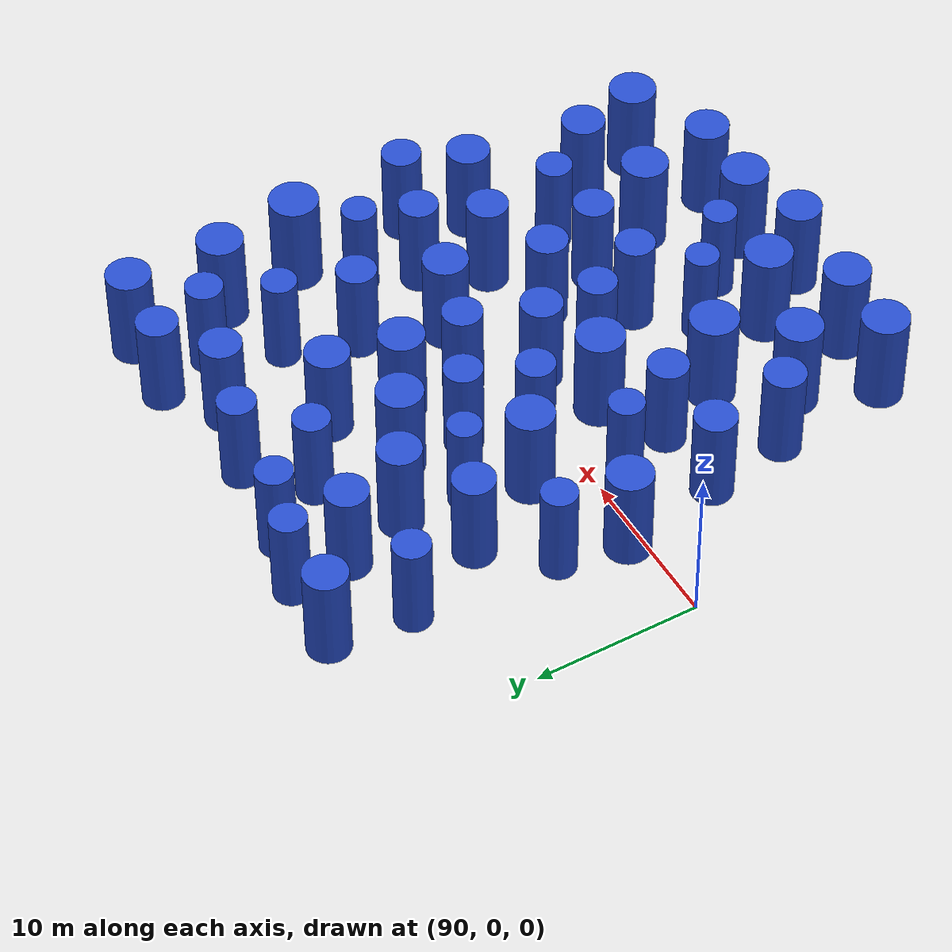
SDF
<sdf version="1.7">
 <world name="default">
  <model name="39">
   <static>1</static>
   <link name="link">
    <inertial>
     <mass>2</mass>
     <inertia><ixx>6.78663</ixx><ixy>0</ixy><ixz>0</ixz><iyy>6.78663</iyy><iyz>0</iyz><izz>1.57327</izz></inertia>
    </inertial>
    <collision name="collision">
     <geometry><cylinder><length>6</length><radius>1.2543</radius></cylinder></geometry>
     <surface><contact><collide_without_contact>1</collide_without_contact></contact></surface>
    </collision>
    <visual name="visual">
     <geometry><cylinder><length>6</length><radius>1.2543</radius></cylinder></geometry>
     <material>
      <script><uri>file://media/materials/scripts/gazebo.material</uri><name>Gazebo/Blue</name></script>
     </material>
    </visual>
    <gravity>0</gravity>
   </link>
   <pose>96.9068 -5.35558 3 0 -0 0</pose>
  </model>
  <model name="42">
   <static>1</static>
   <link name="link">
    <inertial>
     <mass>2</mass>
     <inertia><ixx>6.6543</ixx><ixy>0</ixy><ixz>0</ixz><iyy>6.6543</iyy><iyz>0</iyz><izz>1.3086</izz></inertia>
    </inertial>
    <collision name="collision">
     <geometry><cylinder><length>6</length><radius>1.14394</radius></cylinder></geometry>
     <surface><contact><collide_without_contact>1</collide_without_contact></contact></surface>
    </collision>
    <visual name="visual">
     <geometry><cylinder><length>6</length><radius>1.14394</radius></cylinder></geometry>
     <material>
      <script><uri>file://media/materials/scripts/gazebo.material</uri><name>Gazebo/Blue</name></script>
     </material>
    </visual>
    <gravity>0</gravity>
   </link>
   <pose>111.082 16.8538 3 0 -0 0</pose>
  </model>
  <model name="52">
   <static>1</static>
   <link name="link">
    <inertial>
     <mass>2</mass>
     <inertia><ixx>7.11514</ixx><ixy>0</ixy><ixz>0</ixz><iyy>7.11514</iyy><iyz>0</iyz><izz>2.23028</izz></inertia>
    </inertial>
    <collision name="collision">
     <geometry><cylinder><length>6</length><radius>1.49341</radius></cylinder></geometry>
     <surface><contact><collide_without_contact>1</collide_without_contact></contact></surface>
    </collision>
    <visual name="visual">
     <geometry><cylinder><length>6</length><radius>1.49341</radius></cylinder></geometry>
     <material>
      <script><uri>file://media/materials/scripts/gazebo.material</uri><name>Gazebo/Blue</name></script>
     </material>
    </visual>
    <gravity>0</gravity>
   </link>
   <pose>123.838 6.60741 3 0 -0 0</pose>
  </model>
  <model name="56">
   <static>1</static>
   <link name="link">
    <inertial>
     <mass>2</mass>
     <inertia><ixx>7.01812</ixx><ixy>0</ixy><ixz>0</ixz><iyy>7.01812</iyy><iyz>0</iyz><izz>2.03624</izz></inertia>
    </inertial>
    <collision name="collision">
     <geometry><cylinder><length>6</length><radius>1.42697</radius></cylinder></geometry>
     <surface><contact><collide_without_contact>1</collide_without_contact></contact></surface>
    </collision>
    <visual name="visual">
     <geometry><cylinder><length>6</length><radius>1.42697</radius></cylinder></geometry>
     <material>
      <script><uri>file://media/materials/scripts/gazebo.material</uri><name>Gazebo/Blue</name></script>
     </material>
    </visual>
    <gravity>0</gravity>
   </link>
   <pose>122.304 -15.5514 3 0 -0 0</pose>
  </model>
  <model name="62">
   <static>1</static>
   <link name="link">
    <inertial>
     <mass>2</mass>
     <inertia><ixx>6.91961</ixx><ixy>0</ixy><ixz>0</ixz><iyy>6.91961</iyy><iyz>0</iyz><izz>1.83922</izz></inertia>
    </inertial>
    <collision name="collision">
     <geometry><cylinder><length>6</length><radius>1.35618</radius></cylinder></geometry>
     <surface><contact><collide_without_contact>1</collide_without_contact></contact></surface>
    </collision>
    <visual name="visual">
     <geometry><cylinder><length>6</length><radius>1.35618</radius></cylinder></geometry>
     <material>
      <script><uri>file://media/materials/scripts/gazebo.material</uri><name>Gazebo/Blue</name></script>
     </material>
    </visual>
    <gravity>0</gravity>
   </link>
   <pose>115.081 1.41427 3 0 -0 0</pose>
  </model>
  <model name="63">
   <static>1</static>
   <link name="link">
    <inertial>
     <mass>2</mass>
     <inertia><ixx>6.83665</ixx><ixy>0</ixy><ixz>0</ixz><iyy>6.83665</iyy><iyz>0</iyz><izz>1.6733</izz></inertia>
    </inertial>
    <collision name="collision">
     <geometry><cylinder><length>6</length><radius>1.29356</radius></cylinder></geometry>
     <surface><contact><collide_without_contact>1</collide_without_contact></contact></surface>
    </collision>
    <visual name="visual">
     <geometry><cylinder><length>6</length><radius>1.29356</radius></cylinder></geometry>
     <material>
      <script><uri>file://media/materials/scripts/gazebo.material</uri><name>Gazebo/Blue</name></script>
     </material>
    </visual>
    <gravity>0</gravity>
   </link>
   <pose>103.454 10.8356 3 0 -0 0</pose>
  </model>
  <model name="83">
   <static>1</static>
   <link name="link">
    <inertial>
     <mass>2</mass>
     <inertia><ixx>6.6061</ixx><ixy>0</ixy><ixz>0</ixz><iyy>6.6061</iyy><iyz>0</iyz><izz>1.21219</izz></inertia>
    </inertial>
    <collision name="collision">
     <geometry><cylinder><length>6</length><radius>1.101</radius></cylinder></geometry>
     <surface><contact><collide_without_contact>1</collide_without_contact></contact></surface>
    </collision>
    <visual name="visual">
     <geometry><cylinder><length>6</length><radius>1.101</radius></cylinder></geometry>
     <material>
      <script><uri>file://media/materials/scripts/gazebo.material</uri><name>Gazebo/Blue</name></script>
     </material>
    </visual>
    <gravity>0</gravity>
   </link>
   <pose>105.418 17.4841 3 0 -0 0</pose>
  </model>
  <model name="99">
   <static>1</static>
   <link name="link">
    <inertial>
     <mass>2</mass>
     <inertia><ixx>6.55403</ixx><ixy>0</ixy><ixz>0</ixz><iyy>6.55403</iyy><iyz>0</iyz><izz>1.10806</izz></inertia>
    </inertial>
    <collision name="collision">
     <geometry><cylinder><length>6</length><radius>1.05265</radius></cylinder></geometry>
     <surface><contact><collide_without_contact>1</collide_without_contact></contact></surface>
    </collision>
    <visual name="visual">
     <geometry><cylinder><length>6</length><radius>1.05265</radius></cylinder></geometry>
     <material>
      <script><uri>file://media/materials/scripts/gazebo.material</uri><name>Gazebo/Blue</name></script>
     </material>
    </visual>
    <gravity>0</gravity>
   </link>
   <pose>118.27 10.4749 3 0 -0 0</pose>
  </model>
  <model name="131">
   <static>1</static>
   <link name="link">
    <inertial>
     <mass>2</mass>
     <inertia><ixx>6.66448</ixx><ixy>0</ixy><ixz>0</ixz><iyy>6.66448</iyy><iyz>0</iyz><izz>1.32895</izz></inertia>
    </inertial>
    <collision name="collision">
     <geometry><cylinder><length>6</length><radius>1.1528</radius></cylinder></geometry>
     <surface><contact><collide_without_contact>1</collide_without_contact></contact></surface>
    </collision>
    <visual name="visual">
     <geometry><cylinder><length>6</length><radius>1.1528</radius></cylinder></geometry>
     <material>
      <script><uri>file://media/materials/scripts/gazebo.material</uri><name>Gazebo/Blue</name></script>
     </material>
    </visual>
    <gravity>0</gravity>
   </link>
   <pose>105.336 1.13782 3 0 -0 0</pose>
  </model>
  <model name="144">
   <static>1</static>
   <link name="link">
    <inertial>
     <mass>2</mass>
     <inertia><ixx>6.78884</ixx><ixy>0</ixy><ixz>0</ixz><iyy>6.78884</iyy><iyz>0</iyz><izz>1.57769</izz></inertia>
    </inertial>
    <collision name="collision">
     <geometry><cylinder><length>6</length><radius>1.25606</radius></cylinder></geometry>
     <surface><contact><collide_without_contact>1</collide_without_contact></contact></surface>
    </collision>
    <visual name="visual">
     <geometry><cylinder><length>6</length><radius>1.25606</radius></cylinder></geometry>
     <material>
      <script><uri>file://media/materials/scripts/gazebo.material</uri><name>Gazebo/Blue</name></script>
     </material>
    </visual>
    <gravity>0</gravity>
   </link>
   <pose>109.29 -1.56346 3 0 -0 0</pose>
  </model>
  <model name="149">
   <static>1</static>
   <link name="link">
    <inertial>
     <mass>2</mass>
     <inertia><ixx>6.55248</ixx><ixy>0</ixy><ixz>0</ixz><iyy>6.55248</iyy><iyz>0</iyz><izz>1.10496</izz></inertia>
    </inertial>
    <collision name="collision">
     <geometry><cylinder><length>6</length><radius>1.05117</radius></cylinder></geometry>
     <surface><contact><collide_without_contact>1</collide_without_contact></contact></surface>
    </collision>
    <visual name="visual">
     <geometry><cylinder><length>6</length><radius>1.05117</radius></cylinder></geometry>
     <material>
      <script><uri>file://media/materials/scripts/gazebo.material</uri><name>Gazebo/Blue</name></script>
     </material>
    </visual>
    <gravity>0</gravity>
   </link>
   <pose>100.251 -1.67718 3 0 -0 0</pose>
  </model>
  <model name="151">
   <static>1</static>
   <link name="link">
    <inertial>
     <mass>2</mass>
     <inertia><ixx>6.60589</ixx><ixy>0</ixy><ixz>0</ixz><iyy>6.60589</iyy><iyz>0</iyz><izz>1.21178</izz></inertia>
    </inertial>
    <collision name="collision">
     <geometry><cylinder><length>6</length><radius>1.10081</radius></cylinder></geometry>
     <surface><contact><collide_without_contact>1</collide_without_contact></contact></surface>
    </collision>
    <visual name="visual">
     <geometry><cylinder><length>6</length><radius>1.10081</radius></cylinder></geometry>
     <material>
      <script><uri>file://media/materials/scripts/gazebo.material</uri><name>Gazebo/Blue</name></script>
     </material>
    </visual>
    <gravity>0</gravity>
   </link>
   <pose>97.083 13.6072 3 0 -0 0</pose>
  </model>
  <model name="161">
   <static>1</static>
   <link name="link">
    <inertial>
     <mass>2</mass>
     <inertia><ixx>6.93977</ixx><ixy>0</ixy><ixz>0</ixz><iyy>6.93977</iyy><iyz>0</iyz><izz>1.87953</izz></inertia>
    </inertial>
    <collision name="collision">
     <geometry><cylinder><length>6</length><radius>1.37096</radius></cylinder></geometry>
     <surface><contact><collide_without_contact>1</collide_without_contact></contact></surface>
    </collision>
    <visual name="visual">
     <geometry><cylinder><length>6</length><radius>1.37096</radius></cylinder></geometry>
     <material>
      <script><uri>file://media/materials/scripts/gazebo.material</uri><name>Gazebo/Blue</name></script>
     </material>
    </visual>
    <gravity>0</gravity>
   </link>
   <pose>111.058 6.51577 3 0 -0 0</pose>
  </model>
  <model name="176">
   <static>1</static>
   <link name="link">
    <inertial>
     <mass>2</mass>
     <inertia><ixx>6.59238</ixx><ixy>0</ixy><ixz>0</ixz><iyy>6.59238</iyy><iyz>0</iyz><izz>1.18476</izz></inertia>
    </inertial>
    <collision name="collision">
     <geometry><cylinder><length>6</length><radius>1.08847</radius></cylinder></geometry>
     <surface><contact><collide_without_contact>1</collide_without_contact></contact></surface>
    </collision>
    <visual name="visual">
     <geometry><cylinder><length>6</length><radius>1.08847</radius></cylinder></geometry>
     <material>
      <script><uri>file://media/materials/scripts/gazebo.material</uri><name>Gazebo/Blue</name></script>
     </material>
    </visual>
    <gravity>0</gravity>
   </link>
   <pose>102.017 18.4121 3 0 -0 0</pose>
  </model>
  <model name="206">
   <static>1</static>
   <link name="link">
    <inertial>
     <mass>2</mass>
     <inertia><ixx>6.63313</ixx><ixy>0</ixy><ixz>0</ixz><iyy>6.63313</iyy><iyz>0</iyz><izz>1.26625</izz></inertia>
    </inertial>
    <collision name="collision">
     <geometry><cylinder><length>6</length><radius>1.12528</radius></cylinder></geometry>
     <surface><contact><collide_without_contact>1</collide_without_contact></contact></surface>
    </collision>
    <visual name="visual">
     <geometry><cylinder><length>6</length><radius>1.12528</radius></cylinder></geometry>
     <material>
      <script><uri>file://media/materials/scripts/gazebo.material</uri><name>Gazebo/Blue</name></script>
     </material>
    </visual>
    <gravity>0</gravity>
   </link>
   <pose>120.028 14.3503 3 0 -0 0</pose>
  </model>
  <model name="215">
   <static>1</static>
   <link name="link">
    <inertial>
     <mass>2</mass>
     <inertia><ixx>7.0036</ixx><ixy>0</ixy><ixz>0</ixz><iyy>7.0036</iyy><iyz>0</iyz><izz>2.00719</izz></inertia>
    </inertial>
    <collision name="collision">
     <geometry><cylinder><length>6</length><radius>1.41675</radius></cylinder></geometry>
     <surface><contact><collide_without_contact>1</collide_without_contact></contact></surface>
    </collision>
    <visual name="visual">
     <geometry><cylinder><length>6</length><radius>1.41675</radius></cylinder></geometry>
     <material>
      <script><uri>file://media/materials/scripts/gazebo.material</uri><name>Gazebo/Blue</name></script>
     </material>
    </visual>
    <gravity>0</gravity>
   </link>
   <pose>98.5863 -17.7386 3 0 -0 0</pose>
  </model>
  <model name="216">
   <static>1</static>
   <link name="link">
    <inertial>
     <mass>2</mass>
     <inertia><ixx>6.50965</ixx><ixy>0</ixy><ixz>0</ixz><iyy>6.50965</iyy><iyz>0</iyz><izz>1.01929</izz></inertia>
    </inertial>
    <collision name="collision">
     <geometry><cylinder><length>6</length><radius>1.0096</radius></cylinder></geometry>
     <surface><contact><collide_without_contact>1</collide_without_contact></contact></surface>
    </collision>
    <visual name="visual">
     <geometry><cylinder><length>6</length><radius>1.0096</radius></cylinder></geometry>
     <material>
      <script><uri>file://media/materials/scripts/gazebo.material</uri><name>Gazebo/Blue</name></script>
     </material>
    </visual>
    <gravity>0</gravity>
   </link>
   <pose>110.57 -14.3049 3 0 -0 0</pose>
  </model>
  <model name="219">
   <static>1</static>
   <link name="link">
    <inertial>
     <mass>2</mass>
     <inertia><ixx>6.99869</ixx><ixy>0</ixy><ixz>0</ixz><iyy>6.99869</iyy><iyz>0</iyz><izz>1.99738</izz></inertia>
    </inertial>
    <collision name="collision">
     <geometry><cylinder><length>6</length><radius>1.41329</radius></cylinder></geometry>
     <surface><contact><collide_without_contact>1</collide_without_contact></contact></surface>
    </collision>
    <visual name="visual">
     <geometry><cylinder><length>6</length><radius>1.41329</radius></cylinder></geometry>
     <material>
      <script><uri>file://media/materials/scripts/gazebo.material</uri><name>Gazebo/Blue</name></script>
     </material>
    </visual>
    <gravity>0</gravity>
   </link>
   <pose>116.354 -12.7557 3 0 -0 0</pose>
  </model>
  <model name="225">
   <static>1</static>
   <link name="link">
    <inertial>
     <mass>2</mass>
     <inertia><ixx>6.89351</ixx><ixy>0</ixy><ixz>0</ixz><iyy>6.89351</iyy><iyz>0</iyz><izz>1.78702</izz></inertia>
    </inertial>
    <collision name="collision">
     <geometry><cylinder><length>6</length><radius>1.3368</radius></cylinder></geometry>
     <surface><contact><collide_without_contact>1</collide_without_contact></contact></surface>
    </collision>
    <visual name="visual">
     <geometry><cylinder><length>6</length><radius>1.3368</radius></cylinder></geometry>
     <material>
      <script><uri>file://media/materials/scripts/gazebo.material</uri><name>Gazebo/Blue</name></script>
     </material>
    </visual>
    <gravity>0</gravity>
   </link>
   <pose>117.283 -17.6762 3 0 -0 0</pose>
  </model>
  <model name="226">
   <static>1</static>
   <link name="link">
    <inertial>
     <mass>2</mass>
     <inertia><ixx>7.0612</ixx><ixy>0</ixy><ixz>0</ixz><iyy>7.0612</iyy><iyz>0</iyz><izz>2.1224</izz></inertia>
    </inertial>
    <collision name="collision">
     <geometry><cylinder><length>6</length><radius>1.45685</radius></cylinder></geometry>
     <surface><contact><collide_without_contact>1</collide_without_contact></contact></surface>
    </collision>
    <visual name="visual">
     <geometry><cylinder><length>6</length><radius>1.45685</radius></cylinder></geometry>
     <material>
      <script><uri>file://media/materials/scripts/gazebo.material</uri><name>Gazebo/Blue</name></script>
     </material>
    </visual>
    <gravity>0</gravity>
   </link>
   <pose>103.364 -9.34728 3 0 -0 0</pose>
  </model>
  <model name="231">
   <static>1</static>
   <link name="link">
    <inertial>
     <mass>2</mass>
     <inertia><ixx>6.65192</ixx><ixy>0</ixy><ixz>0</ixz><iyy>6.65192</iyy><iyz>0</iyz><izz>1.30383</izz></inertia>
    </inertial>
    <collision name="collision">
     <geometry><cylinder><length>6</length><radius>1.14185</radius></cylinder></geometry>
     <surface><contact><collide_without_contact>1</collide_without_contact></contact></surface>
    </collision>
    <visual name="visual">
     <geometry><cylinder><length>6</length><radius>1.14185</radius></cylinder></geometry>
     <material>
      <script><uri>file://media/materials/scripts/gazebo.material</uri><name>Gazebo/Blue</name></script>
     </material>
    </visual>
    <gravity>0</gravity>
   </link>
   <pose>106.979 4.85049 3 0 -0 0</pose>
  </model>
  <model name="248">
   <static>1</static>
   <link name="link">
    <inertial>
     <mass>2</mass>
     <inertia><ixx>7.03299</ixx><ixy>0</ixy><ixz>0</ixz><iyy>7.03299</iyy><iyz>0</iyz><izz>2.06598</izz></inertia>
    </inertial>
    <collision name="collision">
     <geometry><cylinder><length>6</length><radius>1.43735</radius></cylinder></geometry>
     <surface><contact><collide_without_contact>1</collide_without_contact></contact></surface>
    </collision>
    <visual name="visual">
     <geometry><cylinder><length>6</length><radius>1.43735</radius></cylinder></geometry>
     <material>
      <script><uri>file://media/materials/scripts/gazebo.material</uri><name>Gazebo/Blue</name></script>
     </material>
    </visual>
    <gravity>0</gravity>
   </link>
   <pose>106.365 -14.9417 3 0 -0 0</pose>
  </model>
  <model name="250">
   <static>1</static>
   <link name="link">
    <inertial>
     <mass>2</mass>
     <inertia><ixx>6.77852</ixx><ixy>0</ixy><ixz>0</ixz><iyy>6.77852</iyy><iyz>0</iyz><izz>1.55704</izz></inertia>
    </inertial>
    <collision name="collision">
     <geometry><cylinder><length>6</length><radius>1.24782</radius></cylinder></geometry>
     <surface><contact><collide_without_contact>1</collide_without_contact></contact></surface>
    </collision>
    <visual name="visual">
     <geometry><cylinder><length>6</length><radius>1.24782</radius></cylinder></geometry>
     <material>
      <script><uri>file://media/materials/scripts/gazebo.material</uri><name>Gazebo/Blue</name></script>
     </material>
    </visual>
    <gravity>0</gravity>
   </link>
   <pose>113.58 -4.45693 3 0 -0 0</pose>
  </model>
  <model name="252">
   <static>1</static>
   <link name="link">
    <inertial>
     <mass>2</mass>
     <inertia><ixx>6.78141</ixx><ixy>0</ixy><ixz>0</ixz><iyy>6.78141</iyy><iyz>0</iyz><izz>1.56282</izz></inertia>
    </inertial>
    <collision name="collision">
     <geometry><cylinder><length>6</length><radius>1.25013</radius></cylinder></geometry>
     <surface><contact><collide_without_contact>1</collide_without_contact></contact></surface>
    </collision>
    <visual name="visual">
     <geometry><cylinder><length>6</length><radius>1.25013</radius></cylinder></geometry>
     <material>
      <script><uri>file://media/materials/scripts/gazebo.material</uri><name>Gazebo/Blue</name></script>
     </material>
    </visual>
    <gravity>0</gravity>
   </link>
   <pose>115.497 15.5947 3 0 -0 0</pose>
  </model>
  <model name="253">
   <static>1</static>
   <link name="link">
    <inertial>
     <mass>2</mass>
     <inertia><ixx>6.69574</ixx><ixy>0</ixy><ixz>0</ixz><iyy>6.69574</iyy><iyz>0</iyz><izz>1.39147</izz></inertia>
    </inertial>
    <collision name="collision">
     <geometry><cylinder><length>6</length><radius>1.17961</radius></cylinder></geometry>
     <surface><contact><collide_without_contact>1</collide_without_contact></contact></surface>
    </collision>
    <visual name="visual">
     <geometry><cylinder><length>6</length><radius>1.17961</radius></cylinder></geometry>
     <material>
      <script><uri>file://media/materials/scripts/gazebo.material</uri><name>Gazebo/Blue</name></script>
     </material>
    </visual>
    <gravity>0</gravity>
   </link>
   <pose>119.878 0.50945 3 0 -0 0</pose>
  </model>
  <model name="260">
   <static>1</static>
   <link name="link">
    <inertial>
     <mass>2</mass>
     <inertia><ixx>7.04637</ixx><ixy>0</ixy><ixz>0</ixz><iyy>7.04637</iyy><iyz>0</iyz><izz>2.09275</izz></inertia>
    </inertial>
    <collision name="collision">
     <geometry><cylinder><length>6</length><radius>1.44663</radius></cylinder></geometry>
     <surface><contact><collide_without_contact>1</collide_without_contact></contact></surface>
    </collision>
    <visual name="visual">
     <geometry><cylinder><length>6</length><radius>1.44663</radius></cylinder></geometry>
     <material>
      <script><uri>file://media/materials/scripts/gazebo.material</uri><name>Gazebo/Blue</name></script>
     </material>
    </visual>
    <gravity>0</gravity>
   </link>
   <pose>105.408 -3.10889 3 0 -0 0</pose>
  </model>
  <model name="296">
   <static>1</static>
   <link name="link">
    <inertial>
     <mass>2</mass>
     <inertia><ixx>6.77021</ixx><ixy>0</ixy><ixz>0</ixz><iyy>6.77021</iyy><iyz>0</iyz><izz>1.54043</izz></inertia>
    </inertial>
    <collision name="collision">
     <geometry><cylinder><length>6</length><radius>1.24114</radius></cylinder></geometry>
     <surface><contact><collide_without_contact>1</collide_without_contact></contact></surface>
    </collision>
    <visual name="visual">
     <geometry><cylinder><length>6</length><radius>1.24114</radius></cylinder></geometry>
     <material>
      <script><uri>file://media/materials/scripts/gazebo.material</uri><name>Gazebo/Blue</name></script>
     </material>
    </visual>
    <gravity>0</gravity>
   </link>
   <pose>118.804 17.9223 3 0 -0 0</pose>
  </model>
  <model name="298">
   <static>1</static>
   <link name="link">
    <inertial>
     <mass>2</mass>
     <inertia><ixx>6.96178</ixx><ixy>0</ixy><ixz>0</ixz><iyy>6.96178</iyy><iyz>0</iyz><izz>1.92356</izz></inertia>
    </inertial>
    <collision name="collision">
     <geometry><cylinder><length>6</length><radius>1.38693</radius></cylinder></geometry>
     <surface><contact><collide_without_contact>1</collide_without_contact></contact></surface>
    </collision>
    <visual name="visual">
     <geometry><cylinder><length>6</length><radius>1.38693</radius></cylinder></geometry>
     <material>
      <script><uri>file://media/materials/scripts/gazebo.material</uri><name>Gazebo/Blue</name></script>
     </material>
    </visual>
    <gravity>0</gravity>
   </link>
   <pose>100.486 -13.2019 3 0 -0 0</pose>
  </model>
  <model name="300">
   <static>1</static>
   <link name="link">
    <inertial>
     <mass>2</mass>
     <inertia><ixx>6.71025</ixx><ixy>0</ixy><ixz>0</ixz><iyy>6.71025</iyy><iyz>0</iyz><izz>1.4205</izz></inertia>
    </inertial>
    <collision name="collision">
     <geometry><cylinder><length>6</length><radius>1.19185</radius></cylinder></geometry>
     <surface><contact><collide_without_contact>1</collide_without_contact></contact></surface>
    </collision>
    <visual name="visual">
     <geometry><cylinder><length>6</length><radius>1.19185</radius></cylinder></geometry>
     <material>
      <script><uri>file://media/materials/scripts/gazebo.material</uri><name>Gazebo/Blue</name></script>
     </material>
    </visual>
    <gravity>0</gravity>
   </link>
   <pose>124.222 -0.750996 3 0 -0 0</pose>
  </model>
  <model name="306">
   <static>1</static>
   <link name="link">
    <inertial>
     <mass>2</mass>
     <inertia><ixx>6.58584</ixx><ixy>0</ixy><ixz>0</ixz><iyy>6.58584</iyy><iyz>0</iyz><izz>1.17169</izz></inertia>
    </inertial>
    <collision name="collision">
     <geometry><cylinder><length>6</length><radius>1.08245</radius></cylinder></geometry>
     <surface><contact><collide_without_contact>1</collide_without_contact></contact></surface>
    </collision>
    <visual name="visual">
     <geometry><cylinder><length>6</length><radius>1.08245</radius></cylinder></geometry>
     <material>
      <script><uri>file://media/materials/scripts/gazebo.material</uri><name>Gazebo/Blue</name></script>
     </material>
    </visual>
    <gravity>0</gravity>
   </link>
   <pose>118.829 -8.02923 3 0 -0 0</pose>
  </model>
  <model name="326">
   <static>1</static>
   <link name="link">
    <inertial>
     <mass>2</mass>
     <inertia><ixx>6.78618</ixx><ixy>0</ixy><ixz>0</ixz><iyy>6.78618</iyy><iyz>0</iyz><izz>1.57236</izz></inertia>
    </inertial>
    <collision name="collision">
     <geometry><cylinder><length>6</length><radius>1.25394</radius></cylinder></geometry>
     <surface><contact><collide_without_contact>1</collide_without_contact></contact></surface>
    </collision>
    <visual name="visual">
     <geometry><cylinder><length>6</length><radius>1.25394</radius></cylinder></geometry>
     <material>
      <script><uri>file://media/materials/scripts/gazebo.material</uri><name>Gazebo/Blue</name></script>
     </material>
    </visual>
    <gravity>0</gravity>
   </link>
   <pose>99.5092 8.42386 3 0 -0 0</pose>
  </model>
  <model name="341">
   <static>1</static>
   <link name="link">
    <inertial>
     <mass>2</mass>
     <inertia><ixx>6.56323</ixx><ixy>0</ixy><ixz>0</ixz><iyy>6.56323</iyy><iyz>0</iyz><izz>1.12647</izz></inertia>
    </inertial>
    <collision name="collision">
     <geometry><cylinder><length>6</length><radius>1.06135</radius></cylinder></geometry>
     <surface><contact><collide_without_contact>1</collide_without_contact></contact></surface>
    </collision>
    <visual name="visual">
     <geometry><cylinder><length>6</length><radius>1.06135</radius></cylinder></geometry>
     <material>
      <script><uri>file://media/materials/scripts/gazebo.material</uri><name>Gazebo/Blue</name></script>
     </material>
    </visual>
    <gravity>0</gravity>
   </link>
   <pose>96.3451 4.93652 3 0 -0 0</pose>
  </model>
  <model name="367">
   <static>1</static>
   <link name="link">
    <inertial>
     <mass>2</mass>
     <inertia><ixx>6.54648</ixx><ixy>0</ixy><ixz>0</ixz><iyy>6.54648</iyy><iyz>0</iyz><izz>1.09296</izz></inertia>
    </inertial>
    <collision name="collision">
     <geometry><cylinder><length>6</length><radius>1.04545</radius></cylinder></geometry>
     <surface><contact><collide_without_contact>1</collide_without_contact></contact></surface>
    </collision>
    <visual name="visual">
     <geometry><cylinder><length>6</length><radius>1.04545</radius></cylinder></geometry>
     <material>
      <script><uri>file://media/materials/scripts/gazebo.material</uri><name>Gazebo/Blue</name></script>
     </material>
    </visual>
    <gravity>0</gravity>
   </link>
   <pose>121.241 3.70567 3 0 -0 0</pose>
  </model>
  <model name="374">
   <static>1</static>
   <link name="link">
    <inertial>
     <mass>2</mass>
     <inertia><ixx>6.70713</ixx><ixy>0</ixy><ixz>0</ixz><iyy>6.70713</iyy><iyz>0</iyz><izz>1.41426</izz></inertia>
    </inertial>
    <collision name="collision">
     <geometry><cylinder><length>6</length><radius>1.18923</radius></cylinder></geometry>
     <surface><contact><collide_without_contact>1</collide_without_contact></contact></surface>
    </collision>
    <visual name="visual">
     <geometry><cylinder><length>6</length><radius>1.18923</radius></cylinder></geometry>
     <material>
      <script><uri>file://media/materials/scripts/gazebo.material</uri><name>Gazebo/Blue</name></script>
     </material>
    </visual>
    <gravity>0</gravity>
   </link>
   <pose>110.826 -8.70696 3 0 -0 0</pose>
  </model>
  <model name="377">
   <static>1</static>
   <link name="link">
    <inertial>
     <mass>2</mass>
     <inertia><ixx>6.6814</ixx><ixy>0</ixy><ixz>0</ixz><iyy>6.6814</iyy><iyz>0</iyz><izz>1.36279</izz></inertia>
    </inertial>
    <collision name="collision">
     <geometry><cylinder><length>6</length><radius>1.16739</radius></cylinder></geometry>
     <surface><contact><collide_without_contact>1</collide_without_contact></contact></surface>
    </collision>
    <visual name="visual">
     <geometry><cylinder><length>6</length><radius>1.16739</radius></cylinder></geometry>
     <material>
      <script><uri>file://media/materials/scripts/gazebo.material</uri><name>Gazebo/Blue</name></script>
     </material>
    </visual>
    <gravity>0</gravity>
   </link>
   <pose>109.204 -5.19663 3 0 -0 0</pose>
  </model>
  <model name="384">
   <static>1</static>
   <link name="link">
    <inertial>
     <mass>2</mass>
     <inertia><ixx>6.98659</ixx><ixy>0</ixy><ixz>0</ixz><iyy>6.98659</iyy><iyz>0</iyz><izz>1.97318</izz></inertia>
    </inertial>
    <collision name="collision">
     <geometry><cylinder><length>6</length><radius>1.4047</radius></cylinder></geometry>
     <surface><contact><collide_without_contact>1</collide_without_contact></contact></surface>
    </collision>
    <visual name="visual">
     <geometry><cylinder><length>6</length><radius>1.4047</radius></cylinder></geometry>
     <material>
      <script><uri>file://media/materials/scripts/gazebo.material</uri><name>Gazebo/Blue</name></script>
     </material>
    </visual>
    <gravity>0</gravity>
   </link>
   <pose>102.204 3.30427 3 0 -0 0</pose>
  </model>
  <model name="393">
   <static>1</static>
   <link name="link">
    <inertial>
     <mass>2</mass>
     <inertia><ixx>7.02995</ixx><ixy>0</ixy><ixz>0</ixz><iyy>7.02995</iyy><iyz>0</iyz><izz>2.05991</izz></inertia>
    </inertial>
    <collision name="collision">
     <geometry><cylinder><length>6</length><radius>1.43524</radius></cylinder></geometry>
     <surface><contact><collide_without_contact>1</collide_without_contact></contact></surface>
    </collision>
    <visual name="visual">
     <geometry><cylinder><length>6</length><radius>1.43524</radius></cylinder></geometry>
     <material>
      <script><uri>file://media/materials/scripts/gazebo.material</uri><name>Gazebo/Blue</name></script>
     </material>
    </visual>
    <gravity>0</gravity>
   </link>
   <pose>112.901 -17.5183 3 0 -0 0</pose>
  </model>
  <model name="396">
   <static>1</static>
   <link name="link">
    <inertial>
     <mass>2</mass>
     <inertia><ixx>6.78049</ixx><ixy>0</ixy><ixz>0</ixz><iyy>6.78049</iyy><iyz>0</iyz><izz>1.56098</izz></inertia>
    </inertial>
    <collision name="collision">
     <geometry><cylinder><length>6</length><radius>1.24939</radius></cylinder></geometry>
     <surface><contact><collide_without_contact>1</collide_without_contact></contact></surface>
    </collision>
    <visual name="visual">
     <geometry><cylinder><length>6</length><radius>1.24939</radius></cylinder></geometry>
     <material>
      <script><uri>file://media/materials/scripts/gazebo.material</uri><name>Gazebo/Blue</name></script>
     </material>
    </visual>
    <gravity>0</gravity>
   </link>
   <pose>117.889 -2.972 3 0 -0 0</pose>
  </model>
  <model name="405">
   <static>1</static>
   <link name="link">
    <inertial>
     <mass>2</mass>
     <inertia><ixx>6.87516</ixx><ixy>0</ixy><ixz>0</ixz><iyy>6.87516</iyy><iyz>0</iyz><izz>1.75032</izz></inertia>
    </inertial>
    <collision name="collision">
     <geometry><cylinder><length>6</length><radius>1.323</radius></cylinder></geometry>
     <surface><contact><collide_without_contact>1</collide_without_contact></contact></surface>
    </collision>
    <visual name="visual">
     <geometry><cylinder><length>6</length><radius>1.323</radius></cylinder></geometry>
     <material>
      <script><uri>file://media/materials/scripts/gazebo.material</uri><name>Gazebo/Blue</name></script>
     </material>
    </visual>
    <gravity>0</gravity>
   </link>
   <pose>111.909 10.7725 3 0 -0 0</pose>
  </model>
  <model name="410">
   <static>1</static>
   <link name="link">
    <inertial>
     <mass>2</mass>
     <inertia><ixx>6.97256</ixx><ixy>0</ixy><ixz>0</ixz><iyy>6.97256</iyy><iyz>0</iyz><izz>1.94512</izz></inertia>
    </inertial>
    <collision name="collision">
     <geometry><cylinder><length>6</length><radius>1.39468</radius></cylinder></geometry>
     <surface><contact><collide_without_contact>1</collide_without_contact></contact></surface>
    </collision>
    <visual name="visual">
     <geometry><cylinder><length>6</length><radius>1.39468</radius></cylinder></geometry>
     <material>
      <script><uri>file://media/materials/scripts/gazebo.material</uri><name>Gazebo/Blue</name></script>
     </material>
    </visual>
    <gravity>0</gravity>
   </link>
   <pose>123.018 11.83 3 0 -0 0</pose>
  </model>
  <model name="412">
   <static>1</static>
   <link name="link">
    <inertial>
     <mass>2</mass>
     <inertia><ixx>6.60209</ixx><ixy>0</ixy><ixz>0</ixz><iyy>6.60209</iyy><iyz>0</iyz><izz>1.20419</izz></inertia>
    </inertial>
    <collision name="collision">
     <geometry><cylinder><length>6</length><radius>1.09736</radius></cylinder></geometry>
     <surface><contact><collide_without_contact>1</collide_without_contact></contact></surface>
    </collision>
    <visual name="visual">
     <geometry><cylinder><length>6</length><radius>1.09736</radius></cylinder></geometry>
     <material>
      <script><uri>file://media/materials/scripts/gazebo.material</uri><name>Gazebo/Blue</name></script>
     </material>
    </visual>
    <gravity>0</gravity>
   </link>
   <pose>107.893 13.8842 3 0 -0 0</pose>
  </model>
  <model name="417">
   <static>1</static>
   <link name="link">
    <inertial>
     <mass>2</mass>
     <inertia><ixx>6.71624</ixx><ixy>0</ixy><ixz>0</ixz><iyy>6.71624</iyy><iyz>0</iyz><izz>1.43248</izz></inertia>
    </inertial>
    <collision name="collision">
     <geometry><cylinder><length>6</length><radius>1.19686</radius></cylinder></geometry>
     <surface><contact><collide_without_contact>1</collide_without_contact></contact></surface>
    </collision>
    <visual name="visual">
     <geometry><cylinder><length>6</length><radius>1.19686</radius></cylinder></geometry>
     <material>
      <script><uri>file://media/materials/scripts/gazebo.material</uri><name>Gazebo/Blue</name></script>
     </material>
    </visual>
    <gravity>0</gravity>
   </link>
   <pose>116.877 6.23394 3 0 -0 0</pose>
  </model>
  <model name="420">
   <static>1</static>
   <link name="link">
    <inertial>
     <mass>2</mass>
     <inertia><ixx>6.9205</ixx><ixy>0</ixy><ixz>0</ixz><iyy>6.9205</iyy><iyz>0</iyz><izz>1.84101</izz></inertia>
    </inertial>
    <collision name="collision">
     <geometry><cylinder><length>6</length><radius>1.35684</radius></cylinder></geometry>
     <surface><contact><collide_without_contact>1</collide_without_contact></contact></surface>
    </collision>
    <visual name="visual">
     <geometry><cylinder><length>6</length><radius>1.35684</radius></cylinder></geometry>
     <material>
      <script><uri>file://media/materials/scripts/gazebo.material</uri><name>Gazebo/Blue</name></script>
     </material>
    </visual>
    <gravity>0</gravity>
   </link>
   <pose>95.641 0.917125 3 0 -0 0</pose>
  </model>
  <model name="435">
   <static>1</static>
   <link name="link">
    <inertial>
     <mass>2</mass>
     <inertia><ixx>6.77064</ixx><ixy>0</ixy><ixz>0</ixz><iyy>6.77064</iyy><iyz>0</iyz><izz>1.54129</izz></inertia>
    </inertial>
    <collision name="collision">
     <geometry><cylinder><length>6</length><radius>1.24149</radius></cylinder></geometry>
     <surface><contact><collide_without_contact>1</collide_without_contact></contact></surface>
    </collision>
    <visual name="visual">
     <geometry><cylinder><length>6</length><radius>1.24149</radius></cylinder></geometry>
     <material>
      <script><uri>file://media/materials/scripts/gazebo.material</uri><name>Gazebo/Blue</name></script>
     </material>
    </visual>
    <gravity>0</gravity>
   </link>
   <pose>97.7713 -10.4511 3 0 -0 0</pose>
  </model>
  <model name="437">
   <static>1</static>
   <link name="link">
    <inertial>
     <mass>2</mass>
     <inertia><ixx>6.85996</ixx><ixy>0</ixy><ixz>0</ixz><iyy>6.85996</iyy><iyz>0</iyz><izz>1.71991</izz></inertia>
    </inertial>
    <collision name="collision">
     <geometry><cylinder><length>6</length><radius>1.31145</radius></cylinder></geometry>
     <surface><contact><collide_without_contact>1</collide_without_contact></contact></surface>
    </collision>
    <visual name="visual">
     <geometry><cylinder><length>6</length><radius>1.31145</radius></cylinder></geometry>
     <material>
      <script><uri>file://media/materials/scripts/gazebo.material</uri><name>Gazebo/Blue</name></script>
     </material>
    </visual>
    <gravity>0</gravity>
   </link>
   <pose>122.517 -4.31022 3 0 -0 0</pose>
  </model>
  <model name="444">
   <static>1</static>
   <link name="link">
    <inertial>
     <mass>2</mass>
     <inertia><ixx>6.86967</ixx><ixy>0</ixy><ixz>0</ixz><iyy>6.86967</iyy><iyz>0</iyz><izz>1.73934</izz></inertia>
    </inertial>
    <collision name="collision">
     <geometry><cylinder><length>6</length><radius>1.31884</radius></cylinder></geometry>
     <surface><contact><collide_without_contact>1</collide_without_contact></contact></surface>
    </collision>
    <visual name="visual">
     <geometry><cylinder><length>6</length><radius>1.31884</radius></cylinder></geometry>
     <material>
      <script><uri>file://media/materials/scripts/gazebo.material</uri><name>Gazebo/Blue</name></script>
     </material>
    </visual>
    <gravity>0</gravity>
   </link>
   <pose>121.333 -11.5195 3 0 -0 0</pose>
  </model>
  <model name="448">
   <static>1</static>
   <link name="link">
    <inertial>
     <mass>2</mass>
     <inertia><ixx>6.73469</ixx><ixy>0</ixy><ixz>0</ixz><iyy>6.73469</iyy><iyz>0</iyz><izz>1.46939</izz></inertia>
    </inertial>
    <collision name="collision">
     <geometry><cylinder><length>6</length><radius>1.21218</radius></cylinder></geometry>
     <surface><contact><collide_without_contact>1</collide_without_contact></contact></surface>
    </collision>
    <visual name="visual">
     <geometry><cylinder><length>6</length><radius>1.21218</radius></cylinder></geometry>
     <material>
      <script><uri>file://media/materials/scripts/gazebo.material</uri><name>Gazebo/Blue</name></script>
     </material>
    </visual>
    <gravity>0</gravity>
   </link>
   <pose>114.855 -8.33667 3 0 -0 0</pose>
  </model>
  <model name="462">
   <static>1</static>
   <link name="link">
    <inertial>
     <mass>2</mass>
     <inertia><ixx>6.95325</ixx><ixy>0</ixy><ixz>0</ixz><iyy>6.95325</iyy><iyz>0</iyz><izz>1.9065</izz></inertia>
    </inertial>
    <collision name="collision">
     <geometry><cylinder><length>6</length><radius>1.38076</radius></cylinder></geometry>
     <surface><contact><collide_without_contact>1</collide_without_contact></contact></surface>
    </collision>
    <visual name="visual">
     <geometry><cylinder><length>6</length><radius>1.38076</radius></cylinder></geometry>
     <material>
      <script><uri>file://media/materials/scripts/gazebo.material</uri><name>Gazebo/Blue</name></script>
     </material>
    </visual>
    <gravity>0</gravity>
   </link>
   <pose>107.27 8.70949 3 0 -0 0</pose>
  </model>
  <model name="468">
   <static>1</static>
   <link name="link">
    <inertial>
     <mass>2</mass>
     <inertia><ixx>6.71622</ixx><ixy>0</ixy><ixz>0</ixz><iyy>6.71622</iyy><iyz>0</iyz><izz>1.43244</izz></inertia>
    </inertial>
    <collision name="collision">
     <geometry><cylinder><length>6</length><radius>1.19684</radius></cylinder></geometry>
     <surface><contact><collide_without_contact>1</collide_without_contact></contact></surface>
    </collision>
    <visual name="visual">
     <geometry><cylinder><length>6</length><radius>1.19684</radius></cylinder></geometry>
     <material>
      <script><uri>file://media/materials/scripts/gazebo.material</uri><name>Gazebo/Blue</name></script>
     </material>
    </visual>
    <gravity>0</gravity>
   </link>
   <pose>110.906 2.67047 3 0 -0 0</pose>
  </model>
  <model name="478">
   <static>1</static>
   <link name="link">
    <inertial>
     <mass>2</mass>
     <inertia><ixx>6.98412</ixx><ixy>0</ixy><ixz>0</ixz><iyy>6.98412</iyy><iyz>0</iyz><izz>1.96825</izz></inertia>
    </inertial>
    <collision name="collision">
     <geometry><cylinder><length>6</length><radius>1.40294</radius></cylinder></geometry>
     <surface><contact><collide_without_contact>1</collide_without_contact></contact></surface>
    </collision>
    <visual name="visual">
     <geometry><cylinder><length>6</length><radius>1.40294</radius></cylinder></geometry>
     <material>
      <script><uri>file://media/materials/scripts/gazebo.material</uri><name>Gazebo/Blue</name></script>
     </material>
    </visual>
    <gravity>0</gravity>
   </link>
   <pose>102.878 -18.0151 3 0 -0 0</pose>
  </model>
  <model name="479">
   <static>1</static>
   <link name="link">
    <inertial>
     <mass>2</mass>
     <inertia><ixx>6.80291</ixx><ixy>0</ixy><ixz>0</ixz><iyy>6.80291</iyy><iyz>0</iyz><izz>1.60582</izz></inertia>
    </inertial>
    <collision name="collision">
     <geometry><cylinder><length>6</length><radius>1.26721</radius></cylinder></geometry>
     <surface><contact><collide_without_contact>1</collide_without_contact></contact></surface>
    </collision>
    <visual name="visual">
     <geometry><cylinder><length>6</length><radius>1.26721</radius></cylinder></geometry>
     <material>
      <script><uri>file://media/materials/scripts/gazebo.material</uri><name>Gazebo/Blue</name></script>
     </material>
    </visual>
    <gravity>0</gravity>
   </link>
   <pose>102.186 14.7642 3 0 -0 0</pose>
  </model>
  <model name="483">
   <static>1</static>
   <link name="link">
    <inertial>
     <mass>2</mass>
     <inertia><ixx>6.9062</ixx><ixy>0</ixy><ixz>0</ixz><iyy>6.9062</iyy><iyz>0</iyz><izz>1.81241</izz></inertia>
    </inertial>
    <collision name="collision">
     <geometry><cylinder><length>6</length><radius>1.34626</radius></cylinder></geometry>
     <surface><contact><collide_without_contact>1</collide_without_contact></contact></surface>
    </collision>
    <visual name="visual">
     <geometry><cylinder><length>6</length><radius>1.34626</radius></cylinder></geometry>
     <material>
      <script><uri>file://media/materials/scripts/gazebo.material</uri><name>Gazebo/Blue</name></script>
     </material>
    </visual>
    <gravity>0</gravity>
   </link>
   <pose>123.048 17.6482 3 0 -0 0</pose>
  </model>
  <model name="492">
   <static>1</static>
   <link name="link">
    <inertial>
     <mass>2</mass>
     <inertia><ixx>6.82754</ixx><ixy>0</ixy><ixz>0</ixz><iyy>6.82754</iyy><iyz>0</iyz><izz>1.65509</izz></inertia>
    </inertial>
    <collision name="collision">
     <geometry><cylinder><length>6</length><radius>1.2865</radius></cylinder></geometry>
     <surface><contact><collide_without_contact>1</collide_without_contact></contact></surface>
    </collision>
    <visual name="visual">
     <geometry><cylinder><length>6</length><radius>1.2865</radius></cylinder></geometry>
     <material>
      <script><uri>file://media/materials/scripts/gazebo.material</uri><name>Gazebo/Blue</name></script>
     </material>
    </visual>
    <gravity>0</gravity>
   </link>
   <pose>97.6207 18.4943 3 0 -0 0</pose>
  </model>
  <model name="495">
   <static>1</static>
   <link name="link">
    <inertial>
     <mass>2</mass>
     <inertia><ixx>6.89135</ixx><ixy>0</ixy><ixz>0</ixz><iyy>6.89135</iyy><iyz>0</iyz><izz>1.78269</izz></inertia>
    </inertial>
    <collision name="collision">
     <geometry><cylinder><length>6</length><radius>1.33518</radius></cylinder></geometry>
     <surface><contact><collide_without_contact>1</collide_without_contact></contact></surface>
    </collision>
    <visual name="visual">
     <geometry><cylinder><length>6</length><radius>1.33518</radius></cylinder></geometry>
     <material>
      <script><uri>file://media/materials/scripts/gazebo.material</uri><name>Gazebo/Blue</name></script>
     </material>
    </visual>
    <gravity>0</gravity>
   </link>
   <pose>108.676 -18.5699 3 0 -0 0</pose>
  </model>
  <model name="518">
   <static>1</static>
   <link name="link">
    <inertial>
     <mass>2</mass>
     <inertia><ixx>6.73216</ixx><ixy>0</ixy><ixz>0</ixz><iyy>6.73216</iyy><iyz>0</iyz><izz>1.46433</izz></inertia>
    </inertial>
    <collision name="collision">
     <geometry><cylinder><length>6</length><radius>1.21009</radius></cylinder></geometry>
     <surface><contact><collide_without_contact>1</collide_without_contact></contact></surface>
    </collision>
    <visual name="visual">
     <geometry><cylinder><length>6</length><radius>1.21009</radius></cylinder></geometry>
     <material>
      <script><uri>file://media/materials/scripts/gazebo.material</uri><name>Gazebo/Blue</name></script>
     </material>
    </visual>
    <gravity>0</gravity>
   </link>
   <pose>101.59 -5.19952 3 0 -0 0</pose>
  </model>
  <model name="534">
   <static>1</static>
   <link name="link">
    <inertial>
     <mass>2</mass>
     <inertia><ixx>6.5</ixx><ixy>0</ixy><ixz>0</ixz><iyy>6.5</iyy><iyz>0</iyz><izz>1</izz></inertia>
    </inertial>
    <collision name="collision">
     <geometry><cylinder><length>6</length><radius>1</radius></cylinder></geometry>
     <surface><contact><collide_without_contact>1</collide_without_contact></contact></surface>
    </collision>
    <visual name="visual">
     <geometry><cylinder><length>6</length><radius>1</radius></cylinder></geometry>
     <material>
      <script><uri>file://media/materials/scripts/gazebo.material</uri><name>Gazebo/Blue</name></script>
     </material>
    </visual>
    <gravity>0</gravity>
   </link>
   <pose>108.037 -11.5024 3 0 -0 0</pose>
  </model>
  <model name="562">
   <static>1</static>
   <link name="link">
    <inertial>
     <mass>2</mass>
     <inertia><ixx>6.5</ixx><ixy>0</ixy><ixz>0</ixz><iyy>6.5</iyy><iyz>0</iyz><izz>1</izz></inertia>
    </inertial>
    <collision name="collision">
     <geometry><cylinder><length>6</length><radius>1</radius></cylinder></geometry>
     <surface><contact><collide_without_contact>1</collide_without_contact></contact></surface>
    </collision>
    <visual name="visual">
     <geometry><cylinder><length>6</length><radius>1</radius></cylinder></geometry>
     <material>
      <script><uri>file://media/materials/scripts/gazebo.material</uri><name>Gazebo/Blue</name></script>
     </material>
    </visual>
    <gravity>0</gravity>
   </link>
   <pose>103.236 6.89264 3 0 -0 0</pose>
  </model>
 </world>
</sdf>
